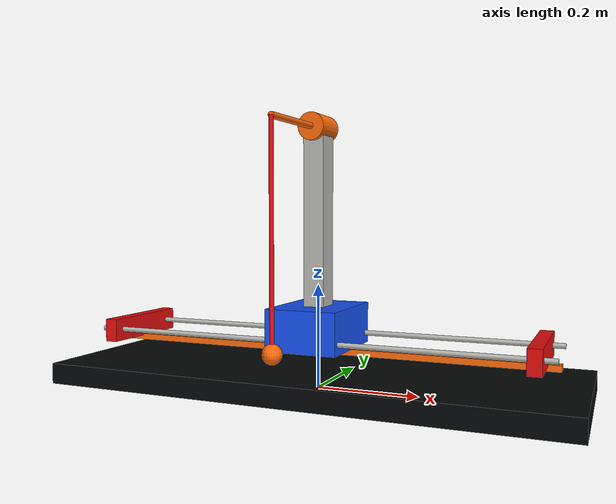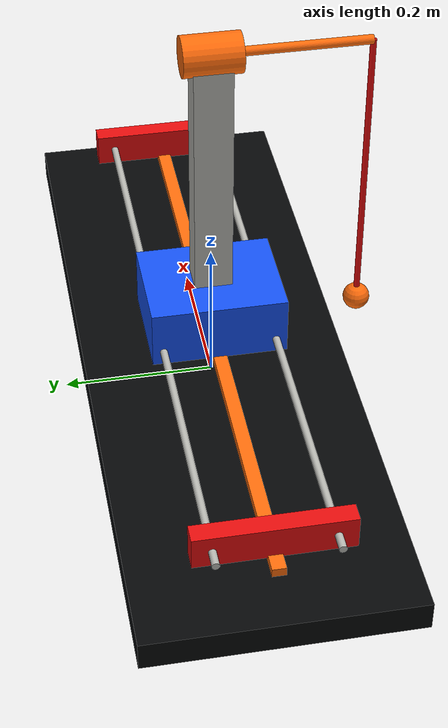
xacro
<?xml version="1.0"?>
<robot name="linear_inverted_pendulum" xmlns:xacro="http://www.ros.org/wiki/xacro">
  <xacro:property name="PI" value="3.141592653589793"/>

  <!-- Manual LIP01 values used here:
       rail travel 78 cm, base 1000 mm x 350 mm, rod D8 x 400 mm, rod mass 200 g. -->
  <xacro:property name="travel" value="0.78"/>
  <xacro:property name="base_length" value="1.00"/>
  <xacro:property name="base_width" value="0.35"/>
  <xacro:property name="base_height" value="0.04"/>
  <xacro:property name="rail_length" value="0.90"/>
  <xacro:property name="rail_radius" value="0.005"/>
  <xacro:property name="rail_y" value="0.075"/>
  <xacro:property name="rail_z" value="0.10"/>
  <xacro:property name="pivot_z" value="0.50"/>
  <xacro:property name="cart_mass" value="1.20"/>
  <xacro:property name="cart_x" value="0.14"/>
  <xacro:property name="cart_y" value="0.18"/>
  <xacro:property name="cart_z" value="0.08"/>
  <xacro:property name="pendulum_length" value="0.40"/>
  <xacro:property name="pendulum_radius" value="0.004"/>
  <xacro:property name="pendulum_mass" value="0.20"/>
  <xacro:property name="pendulum_y_offset" value="-0.20"/>
  <xacro:property name="pendulum_y_offset_abs" value="0.20"/>
  <xacro:property name="pendulum_coupler_radius" value="0.006"/>

  <material name="black">
    <color rgba="0.02 0.025 0.03 1"/>
  </material>
  <material name="orange">
    <color rgba="1.0 0.42 0.04 1"/>
  </material>
  <material name="steel">
    <color rgba="0.72 0.72 0.70 1"/>
  </material>
  <material name="blue">
    <color rgba="0.08 0.32 0.95 1"/>
  </material>
  <material name="red">
    <color rgba="0.9 0.05 0.05 1"/>
  </material>

  <xacro:macro name="box_inertia" params="mass x y z">
    <inertia
      ixx="${mass / 12.0 * (y*y + z*z)}" ixy="0" ixz="0"
      iyy="${mass / 12.0 * (x*x + z*z)}" iyz="0"
      izz="${mass / 12.0 * (x*x + y*y)}"/>
  </xacro:macro>

  <xacro:macro name="cylinder_z_inertia" params="mass radius length">
    <inertia
      ixx="${mass / 12.0 * (3.0*radius*radius + length*length)}" ixy="0" ixz="0"
      iyy="${mass / 12.0 * (3.0*radius*radius + length*length)}" iyz="0"
      izz="${0.5 * mass * radius * radius}"/>
  </xacro:macro>

  <link name="world"/>

  <joint name="world_to_base" type="fixed">
    <parent link="world"/>
    <child link="base_link"/>
    <origin xyz="0 0 0" rpy="0 0 0"/>
  </joint>

  <link name="base_link">
    <inertial>
      <origin xyz="0 0 ${base_height / 2.0}" rpy="0 0 0"/>
      <mass value="10.6"/>
      <xacro:box_inertia mass="10.6" x="${base_length}" y="${base_width}" z="${base_height}"/>
    </inertial>

    <visual name="base_plate">
      <origin xyz="0 0 ${base_height / 2.0}" rpy="0 0 0"/>
      <geometry>
        <box size="${base_length} ${base_width} ${base_height}"/>
      </geometry>
      <material name="black"/>
    </visual>
    <collision name="base_plate_collision">
      <origin xyz="0 0 ${base_height / 2.0}" rpy="0 0 0"/>
      <geometry>
        <box size="${base_length} ${base_width} ${base_height}"/>
      </geometry>
    </collision>

    <visual name="front_linear_shaft">
      <origin xyz="0 ${rail_y} ${rail_z}" rpy="0 ${PI / 2.0} 0"/>
      <geometry>
        <cylinder radius="${rail_radius}" length="${rail_length}"/>
      </geometry>
      <material name="steel"/>
    </visual>
    <visual name="rear_linear_shaft">
      <origin xyz="0 ${-rail_y} ${rail_z}" rpy="0 ${PI / 2.0} 0"/>
      <geometry>
        <cylinder radius="${rail_radius}" length="${rail_length}"/>
      </geometry>
      <material name="steel"/>
    </visual>
    <visual name="timing_belt">
      <origin xyz="0 0 ${rail_z - 0.025}" rpy="0 0 0"/>
      <geometry>
        <box size="${rail_length} 0.018 0.012"/>
      </geometry>
      <material name="orange"/>
    </visual>
    <visual name="left_limit_switch">
      <origin xyz="${-travel / 2.0 - 0.025} 0 ${rail_z}" rpy="0 0 0"/>
      <geometry>
        <box size="0.025 0.20 0.045"/>
      </geometry>
      <material name="red"/>
    </visual>
    <visual name="right_limit_switch">
      <origin xyz="${travel / 2.0 + 0.025} 0 ${rail_z}" rpy="0 0 0"/>
      <geometry>
        <box size="0.025 0.20 0.045"/>
      </geometry>
      <material name="red"/>
    </visual>
  </link>

  <joint name="cart_slider" type="prismatic">
    <parent link="base_link"/>
    <child link="cart_link"/>
    <origin xyz="0 0 ${pivot_z}" rpy="0 0 0"/>
    <axis xyz="1 0 0"/>
    <limit lower="${-travel / 2.0}" upper="${travel / 2.0}" effort="60.0" velocity="1.2"/>
    <dynamics damping="0.02" friction="0.0005"/>
  </joint>

  <link name="cart_link">
    <inertial>
      <origin xyz="0 0 -0.24" rpy="0 0 0"/>
      <mass value="${cart_mass}"/>
      <xacro:box_inertia mass="${cart_mass}" x="${cart_x}" y="${cart_y}" z="0.42"/>
    </inertial>

    <visual name="linear_bearing_carriage">
      <origin xyz="0 0 -0.38" rpy="0 0 0"/>
      <geometry>
        <box size="${cart_x} ${cart_y} ${cart_z}"/>
      </geometry>
      <material name="blue"/>
    </visual>
    <collision name="linear_bearing_carriage_collision">
      <origin xyz="0 0 -0.38" rpy="0 0 0"/>
      <geometry>
        <box size="${cart_x} ${cart_y} ${cart_z}"/>
      </geometry>
    </collision>

    <visual name="pendulum_encoder_bracket">
      <origin xyz="0 0 -0.19" rpy="0 0 0"/>
      <geometry>
        <box size="0.04 0.05 0.38"/>
      </geometry>
      <material name="steel"/>
    </visual>
    <collision name="pendulum_encoder_bracket_collision">
      <origin xyz="0 0 -0.19" rpy="0 0 0"/>
      <geometry>
        <box size="0.04 0.05 0.38"/>
      </geometry>
    </collision>

    <visual name="encoder_hub">
      <origin xyz="0 0 0" rpy="${PI / 2.0} 0 0"/>
      <geometry>
        <cylinder radius="0.026" length="0.075"/>
      </geometry>
      <material name="orange"/>
    </visual>
  </link>

  <joint name="pendulum_hinge" type="continuous">
    <parent link="cart_link"/>
    <child link="pendulum_link"/>
    <origin xyz="0 0 0" rpy="0 0 0"/>
    <axis xyz="0 1 0"/>
    <dynamics damping="0.05" friction="0.0005"/>
  </joint>

  <link name="pendulum_link">
    <inertial>
      <origin xyz="0 ${pendulum_y_offset} ${-pendulum_length / 2.0}" rpy="0 0 0"/>
      <mass value="${pendulum_mass}"/>
      <xacro:cylinder_z_inertia mass="${pendulum_mass}" radius="${pendulum_radius}" length="${pendulum_length}"/>
    </inertial>
    <visual name="shaft_coupler_visual">
      <origin xyz="0 ${pendulum_y_offset / 2.0} 0" rpy="${PI / 2.0} 0 0"/>
      <geometry>
        <cylinder radius="${pendulum_coupler_radius}" length="${pendulum_y_offset_abs}"/>
      </geometry>
      <material name="orange"/>
    </visual>
    <collision name="shaft_coupler_collision">
      <origin xyz="0 ${pendulum_y_offset / 2.0} 0" rpy="${PI / 2.0} 0 0"/>
      <geometry>
        <cylinder radius="${pendulum_coupler_radius}" length="${pendulum_y_offset_abs}"/>
      </geometry>
    </collision>
    <visual name="rod_visual">
      <origin xyz="0 ${pendulum_y_offset} ${-pendulum_length / 2.0}" rpy="0 0 0"/>
      <geometry>
        <cylinder radius="${pendulum_radius}" length="${pendulum_length}"/>
      </geometry>
      <material name="red"/>
    </visual>
    <collision name="rod_collision">
      <origin xyz="0 ${pendulum_y_offset} ${-pendulum_length / 2.0}" rpy="0 0 0"/>
      <geometry>
        <cylinder radius="${pendulum_radius}" length="${pendulum_length}"/>
      </geometry>
    </collision>
    <visual name="tip_marker">
      <origin xyz="0 ${pendulum_y_offset} ${-pendulum_length}" rpy="0 0 0"/>
      <geometry>
        <sphere radius="0.018"/>
      </geometry>
      <material name="orange"/>
    </visual>
  </link>

  <gazebo reference="base_link">
    <material>
      <ambient>0.02 0.025 0.03 1</ambient>
      <diffuse>0.02 0.025 0.03 1</diffuse>
    </material>
  </gazebo>
  <gazebo reference="cart_link">
    <material>
      <ambient>0.08 0.32 0.95 1</ambient>
      <diffuse>0.08 0.32 0.95 1</diffuse>
    </material>
  </gazebo>
  <gazebo reference="pendulum_link">
    <material>
      <ambient>0.90 0.05 0.05 1</ambient>
      <diffuse>0.90 0.05 0.05 1</diffuse>
    </material>
  </gazebo>

  <gazebo>
    <plugin filename="gz-sim-joint-state-publisher-system" name="gz::sim::systems::JointStatePublisher">
      <joint_name>cart_slider</joint_name>
      <joint_name>pendulum_hinge</joint_name>
    </plugin>
    <plugin filename="gz-sim-apply-joint-force-system" name="gz::sim::systems::ApplyJointForce">
      <joint_name>cart_slider</joint_name>
    </plugin>
  </gazebo>
</robot>
